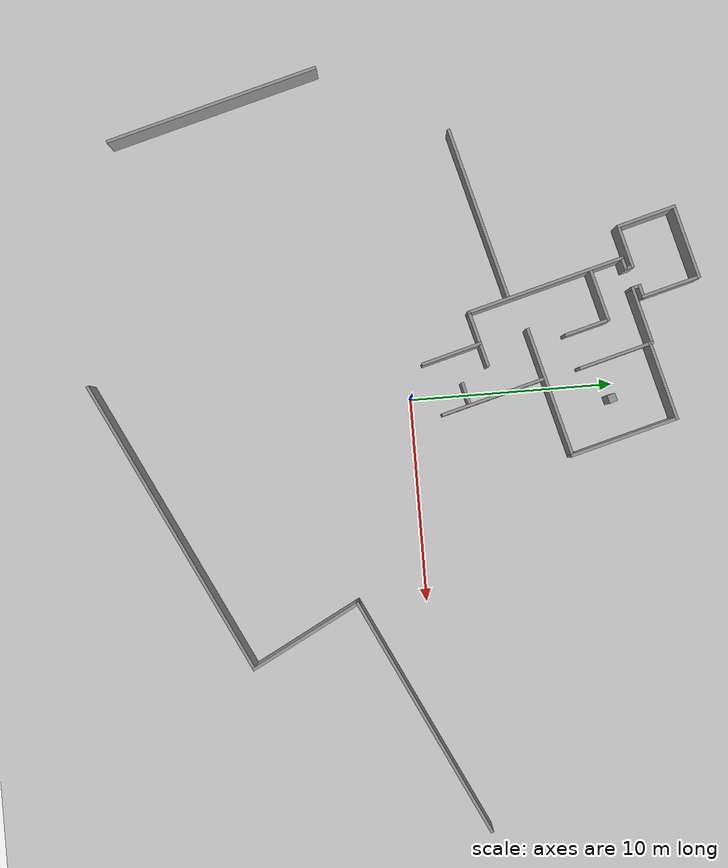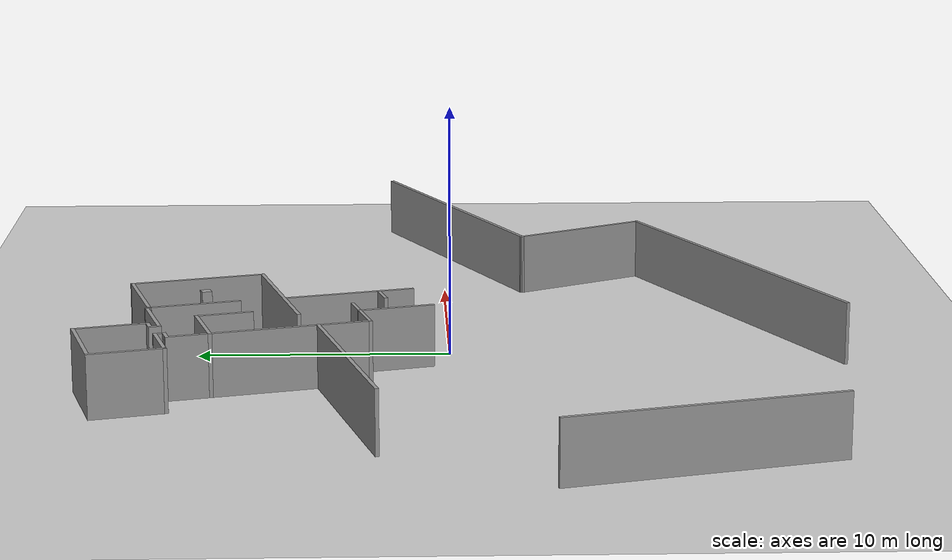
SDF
<sdf version="1.7">
 <world name="default">
  <light name="sun" type="directional">
   <pose>0 0 10 0 -0 0</pose>
   <diffuse>0.8 0.8 0.8 1</diffuse>
   <specular>0.2 0.2 0.2 1</specular>
   <attenuation>
    <range>1000</range>
    <constant>0.9</constant>
    <linear>0.01</linear>
    <quadratic>0.001</quadratic>
   </attenuation>
   <direction>-0.5 0.1 -0.9</direction>
   <spot><inner_angle>0</inner_angle><outer_angle>0</outer_angle><falloff>0</falloff></spot>
  </light>
  <model name="ground_plane">
   <static>1</static>
   <link name="link">
    <collision name="collision">
     <geometry><plane><normal>0 0 1</normal><size>100 100</size></plane></geometry>
     <surface><friction><ode><mu>100</mu><mu2>50</mu2></ode></friction></surface>
    </collision>
    <visual name="visual">
     <cast_shadows>0</cast_shadows>
     <geometry><plane><normal>0 0 1</normal><size>100 100</size></plane></geometry>
     <material>
      <script><uri>file://media/materials/scripts/gazebo.material</uri><name>Gazebo/Grey</name></script>
     </material>
    </visual>
   </link>
  </model>
  <gravity>0 0 -9.8</gravity>
  <magnetic_field>6e-06 2.3e-05 -4.2e-05</magnetic_field>
  <atmosphere type="adiabatic"/>
  <physics type="ode">
   <max_step_size>0.001</max_step_size>
   <real_time_factor>1</real_time_factor>
   <real_time_update_rate>1000</real_time_update_rate>
  </physics>
  <scene><ambient>0.4 0.4 0.4 1</ambient><background>0.7 0.7 0.7 1</background><shadows>1</shadows></scene>
  <spherical_coordinates>
   <surface_model>EARTH_WGS84</surface_model>
   <latitude_deg>0</latitude_deg>
   <longitude_deg>0</longitude_deg>
   <elevation>0</elevation>
   <heading_deg>0</heading_deg>
  </spherical_coordinates>
  <model name="building_0_clone">
   <link name="Wall_10">
    <pose>-4.05228 3.39869 0 0 0 -2.87979</pose>
    <inertial>
     <mass>1</mass>
     <inertia><ixx>1</ixx><ixy>0</ixy><ixz>0</ixz><iyy>1</iyy><iyz>0</iyz><izz>1</izz></inertia>
    </inertial>
    <visual name="Wall_10_Visual">
     <pose>0.025 0 1.25 0 -0 0</pose>
     <geometry><box><size>2.2 0.15 2.5</size></box></geometry>
     <material>
      <script><uri>file://media/materials/scripts/gazebo.material</uri><name>Gazebo/Grey</name></script>
      <ambient>1 1 1 1</ambient>
      <shader type="pixel"><normal_map>__default__</normal_map></shader>
      <diffuse>0.7 0.7 0.7 1</diffuse>
      <specular>0.01 0.01 0.01 1</specular>
      <emissive>0 0 0 1</emissive>
     </material>
     <meta><layer>0</layer></meta>
    </visual>
    <collision name="Wall_10_Collision">
     <pose>0.025 0 1.25 0 -0 0</pose>
     <geometry><box><size>2.2 0.15 2.5</size></box></geometry>
     <surface>
      <friction>
       <ode><mu>1</mu><mu2>1</mu2><fdir1>0 0 0</fdir1><slip1>0</slip1><slip2>0</slip2></ode>
       <torsional>
        <coefficient>1</coefficient>
        <patch_radius>0</patch_radius>
        <surface_radius>0</surface_radius>
        <use_patch_radius>1</use_patch_radius>
        <ode><slip>0</slip></ode>
       </torsional>
      </friction>
      <bounce><restitution_coefficient>0</restitution_coefficient><threshold>1e+06</threshold></bounce>
      <contact>
       <collide_without_contact>0</collide_without_contact>
       <collide_without_contact_bitmask>1</collide_without_contact_bitmask>
       <collide_bitmask>1</collide_bitmask>
       <ode>
        <soft_cfm>0</soft_cfm>
        <soft_erp>0.2</soft_erp>
        <kp>1e+13</kp>
        <kd>1</kd>
        <max_vel>0.01</max_vel>
        <min_depth>0</min_depth>
       </ode>
       <bullet>
        <split_impulse>1</split_impulse>
        <split_impulse_penetration_threshold>-0.01</split_impulse_penetration_threshold>
        <soft_cfm>0</soft_cfm>
        <soft_erp>0.2</soft_erp>
        <kp>1e+13</kp>
        <kd>1</kd>
       </bullet>
      </contact>
     </surface>
    </collision>
   </link>
   <link name="Wall_11">
    <pose>-5.43532 4.50338 0 0 -0 1.8326</pose>
    <visual name="Wall_11_Visual">
     <pose>0 0 1.25 0 -0 0</pose>
     <geometry><box><size>3 0.15 2.5</size></box></geometry>
     <material>
      <script><uri>file://media/materials/scripts/gazebo.material</uri><name>Gazebo/Grey</name></script>
      <ambient>1 1 1 1</ambient>
      <shader type="pixel"/>
     </material>
     <meta><layer>0</layer></meta>
    </visual>
    <collision name="Wall_11_Collision">
     <pose>0 0 1.25 0 -0 0</pose>
     <geometry><box><size>3 0.15 2.5</size></box></geometry>
     <surface>
      <friction>
       <ode><mu>1</mu><mu2>1</mu2><fdir1>0 0 0</fdir1><slip1>0</slip1><slip2>0</slip2></ode>
       <torsional>
        <coefficient>1</coefficient>
        <patch_radius>0</patch_radius>
        <surface_radius>0</surface_radius>
        <use_patch_radius>1</use_patch_radius>
        <ode><slip>0</slip></ode>
       </torsional>
      </friction>
      <bounce><restitution_coefficient>0</restitution_coefficient><threshold>1e+06</threshold></bounce>
      <contact>
       <collide_without_contact>0</collide_without_contact>
       <collide_without_contact_bitmask>1</collide_without_contact_bitmask>
       <collide_bitmask>1</collide_bitmask>
       <ode>
        <soft_cfm>0</soft_cfm>
        <soft_erp>0.2</soft_erp>
        <kp>1e+13</kp>
        <kd>1</kd>
        <max_vel>0.01</max_vel>
        <min_depth>0</min_depth>
       </ode>
       <bullet>
        <split_impulse>1</split_impulse>
        <split_impulse_penetration_threshold>-0.01</split_impulse_penetration_threshold>
        <soft_cfm>0</soft_cfm>
        <soft_erp>0.2</soft_erp>
        <kp>1e+13</kp>
        <kd>1</kd>
       </bullet>
      </contact>
     </surface>
    </collision>
   </link>
   <link name="Wall_14">
    <pose>-4.06547 6.3457 0 0 -0 0.261799</pose>
    <visual name="Wall_14_Visual">
     <pose>0 0 1.25 0 -0 0</pose>
     <geometry><box><size>3.75 0.15 2.5</size></box></geometry>
     <material>
      <script><uri>file://media/materials/scripts/gazebo.material</uri><name>Gazebo/Grey</name></script>
      <ambient>1 1 1 1</ambient>
      <shader type="pixel"/>
     </material>
     <meta><layer>0</layer></meta>
    </visual>
    <collision name="Wall_14_Collision">
     <pose>0 0 1.25 0 -0 0</pose>
     <geometry><box><size>3.75 0.15 2.5</size></box></geometry>
     <surface>
      <friction>
       <ode><mu>1</mu><mu2>1</mu2><fdir1>0 0 0</fdir1><slip1>0</slip1><slip2>0</slip2></ode>
       <torsional>
        <coefficient>1</coefficient>
        <patch_radius>0</patch_radius>
        <surface_radius>0</surface_radius>
        <use_patch_radius>1</use_patch_radius>
        <ode><slip>0</slip></ode>
       </torsional>
      </friction>
      <bounce><restitution_coefficient>0</restitution_coefficient><threshold>1e+06</threshold></bounce>
      <contact>
       <collide_without_contact>0</collide_without_contact>
       <collide_without_contact_bitmask>1</collide_without_contact_bitmask>
       <collide_bitmask>1</collide_bitmask>
       <ode>
        <soft_cfm>0</soft_cfm>
        <soft_erp>0.2</soft_erp>
        <kp>1e+13</kp>
        <kd>1</kd>
        <max_vel>0.01</max_vel>
        <min_depth>0</min_depth>
       </ode>
       <bullet>
        <split_impulse>1</split_impulse>
        <split_impulse_penetration_threshold>-0.01</split_impulse_penetration_threshold>
        <soft_cfm>0</soft_cfm>
        <soft_erp>0.2</soft_erp>
        <kp>1e+13</kp>
        <kd>1</kd>
       </bullet>
      </contact>
     </surface>
    </collision>
   </link>
   <link name="Wall_15">
    <pose>-1.95798 5.43513 0 0 0 -1.309</pose>
    <visual name="Wall_15_Visual">
     <pose>0 0 1.25 0 -0 0</pose>
     <geometry><box><size>3 0.15 2.5</size></box></geometry>
     <material>
      <script><uri>file://media/materials/scripts/gazebo.material</uri><name>Gazebo/Grey</name></script>
      <ambient>1 1 1 1</ambient>
      <shader type="pixel"/>
     </material>
     <meta><layer>0</layer></meta>
    </visual>
    <collision name="Wall_15_Collision">
     <pose>0 0 1.25 0 -0 0</pose>
     <geometry><box><size>3 0.15 2.5</size></box></geometry>
     <surface>
      <friction>
       <ode><mu>1</mu><mu2>1</mu2><fdir1>0 0 0</fdir1><slip1>0</slip1><slip2>0</slip2></ode>
       <torsional>
        <coefficient>1</coefficient>
        <patch_radius>0</patch_radius>
        <surface_radius>0</surface_radius>
        <use_patch_radius>1</use_patch_radius>
        <ode><slip>0</slip></ode>
       </torsional>
      </friction>
      <bounce><restitution_coefficient>0</restitution_coefficient><threshold>1e+06</threshold></bounce>
      <contact>
       <collide_without_contact>0</collide_without_contact>
       <collide_without_contact_bitmask>1</collide_without_contact_bitmask>
       <collide_bitmask>1</collide_bitmask>
       <ode>
        <soft_cfm>0</soft_cfm>
        <soft_erp>0.2</soft_erp>
        <kp>1e+13</kp>
        <kd>1</kd>
        <max_vel>0.01</max_vel>
        <min_depth>0</min_depth>
       </ode>
       <bullet>
        <split_impulse>1</split_impulse>
        <split_impulse_penetration_threshold>-0.01</split_impulse_penetration_threshold>
        <soft_cfm>0</soft_cfm>
        <soft_erp>0.2</soft_erp>
        <kp>1e+13</kp>
        <kd>1</kd>
       </bullet>
      </contact>
     </surface>
    </collision>
   </link>
   <link name="Wall_16">
    <pose>-1.87894 3.98104 0 0 0 -2.87979</pose>
    <inertial>
     <mass>1</mass>
     <inertia><ixx>1</ixx><ixy>0</ixy><ixz>0</ixz><iyy>1</iyy><iyz>0</iyz><izz>1</izz></inertia>
    </inertial>
    <visual name="Wall_16_Visual">
     <pose>-0.025 0 1.25 0 -0 0</pose>
     <geometry><box><size>0.7 0.15 2.5</size></box></geometry>
     <material>
      <script><uri>file://media/materials/scripts/gazebo.material</uri><name>Gazebo/Grey</name></script>
      <ambient>1 1 1 1</ambient>
      <shader type="pixel"><normal_map>__default__</normal_map></shader>
      <diffuse>0.7 0.7 0.7 1</diffuse>
      <specular>0.01 0.01 0.01 1</specular>
      <emissive>0 0 0 1</emissive>
     </material>
     <meta><layer>0</layer></meta>
    </visual>
    <collision name="Wall_16_Collision">
     <pose>-0.025 0 1.25 0 -0 0</pose>
     <geometry><box><size>0.7 0.15 2.5</size></box></geometry>
     <surface>
      <friction>
       <ode><mu>1</mu><mu2>1</mu2><fdir1>0 0 0</fdir1><slip1>0</slip1><slip2>0</slip2></ode>
       <torsional>
        <coefficient>1</coefficient>
        <patch_radius>0</patch_radius>
        <surface_radius>0</surface_radius>
        <use_patch_radius>1</use_patch_radius>
        <ode><slip>0</slip></ode>
       </torsional>
      </friction>
      <bounce><restitution_coefficient>0</restitution_coefficient><threshold>1e+06</threshold></bounce>
      <contact>
       <collide_without_contact>0</collide_without_contact>
       <collide_without_contact_bitmask>1</collide_without_contact_bitmask>
       <collide_bitmask>1</collide_bitmask>
       <ode>
        <soft_cfm>0</soft_cfm>
        <soft_erp>0.2</soft_erp>
        <kp>1e+13</kp>
        <kd>1</kd>
        <max_vel>0.01</max_vel>
        <min_depth>0</min_depth>
       </ode>
       <bullet>
        <split_impulse>1</split_impulse>
        <split_impulse_penetration_threshold>-0.01</split_impulse_penetration_threshold>
        <soft_cfm>0</soft_cfm>
        <soft_erp>0.2</soft_erp>
        <kp>1e+13</kp>
        <kd>1</kd>
       </bullet>
      </contact>
     </surface>
    </collision>
   </link>
   <link name="Wall_17">
    <pose>-2.12343 3.73435 0 0 0 -1.309</pose>
    <inertial>
     <mass>1</mass>
     <inertia><ixx>1</ixx><ixy>0</ixy><ixz>0</ixz><iyy>1</iyy><iyz>0</iyz><izz>1</izz></inertia>
    </inertial>
    <visual name="Wall_17_Visual">
     <pose>0 0.05 1.25 0 -0 0</pose>
     <geometry><box><size>0.5 0.15 2.5</size></box></geometry>
     <material>
      <script><uri>file://media/materials/scripts/gazebo.material</uri><name>Gazebo/Grey</name></script>
      <ambient>1 1 1 1</ambient>
      <shader type="pixel"><normal_map>__default__</normal_map></shader>
      <diffuse>0.7 0.7 0.7 1</diffuse>
      <specular>0.01 0.01 0.01 1</specular>
      <emissive>0 0 0 1</emissive>
     </material>
     <meta><layer>0</layer></meta>
    </visual>
    <collision name="Wall_17_Collision">
     <pose>0 0.05 1.25 0 -0 0</pose>
     <geometry><box><size>0.5 0.15 2.5</size></box></geometry>
     <surface>
      <friction>
       <ode><mu>1</mu><mu2>1</mu2><fdir1>0 0 0</fdir1><slip1>0</slip1><slip2>0</slip2></ode>
       <torsional>
        <coefficient>1</coefficient>
        <patch_radius>0</patch_radius>
        <surface_radius>0</surface_radius>
        <use_patch_radius>1</use_patch_radius>
        <ode><slip>0</slip></ode>
       </torsional>
      </friction>
      <bounce><restitution_coefficient>0</restitution_coefficient><threshold>1e+06</threshold></bounce>
      <contact>
       <collide_without_contact>0</collide_without_contact>
       <collide_without_contact_bitmask>1</collide_without_contact_bitmask>
       <collide_bitmask>1</collide_bitmask>
       <ode>
        <soft_cfm>0</soft_cfm>
        <soft_erp>0.2</soft_erp>
        <kp>1e+13</kp>
        <kd>1</kd>
        <max_vel>0.01</max_vel>
        <min_depth>0</min_depth>
       </ode>
       <bullet>
        <split_impulse>1</split_impulse>
        <split_impulse_penetration_threshold>-0.01</split_impulse_penetration_threshold>
        <soft_cfm>0</soft_cfm>
        <soft_erp>0.2</soft_erp>
        <kp>1e+13</kp>
        <kd>1</kd>
       </bullet>
      </contact>
     </surface>
    </collision>
   </link>
   <link name="Wall_18">
    <pose>-0.70169 3.93413 0 0 -0 0.261799</pose>
    <inertial>
     <mass>1</mass>
     <inertia><ixx>1</ixx><ixy>0</ixy><ixz>0</ixz><iyy>1</iyy><iyz>0</iyz><izz>1</izz></inertia>
    </inertial>
    <visual name="Wall_18_Visual">
     <pose>0.025 0 1.25 0 -0 0</pose>
     <geometry><box><size>2.95 0.15 2.5</size></box></geometry>
     <material>
      <script><uri>file://media/materials/scripts/gazebo.material</uri><name>Gazebo/Grey</name></script>
      <ambient>1 1 1 1</ambient>
      <shader type="pixel"><normal_map>__default__</normal_map></shader>
      <diffuse>0.7 0.7 0.7 1</diffuse>
      <specular>0.01 0.01 0.01 1</specular>
      <emissive>0 0 0 1</emissive>
     </material>
     <meta><layer>0</layer></meta>
    </visual>
    <collision name="Wall_18_Collision">
     <pose>0.025 0 1.25 0 -0 0</pose>
     <geometry><box><size>2.95 0.15 2.5</size></box></geometry>
     <surface>
      <friction>
       <ode><mu>1</mu><mu2>1</mu2><fdir1>0 0 0</fdir1><slip1>0</slip1><slip2>0</slip2></ode>
       <torsional>
        <coefficient>1</coefficient>
        <patch_radius>0</patch_radius>
        <surface_radius>0</surface_radius>
        <use_patch_radius>1</use_patch_radius>
        <ode><slip>0</slip></ode>
       </torsional>
      </friction>
      <bounce><restitution_coefficient>0</restitution_coefficient><threshold>1e+06</threshold></bounce>
      <contact>
       <collide_without_contact>0</collide_without_contact>
       <collide_without_contact_bitmask>1</collide_without_contact_bitmask>
       <collide_bitmask>1</collide_bitmask>
       <ode>
        <soft_cfm>0</soft_cfm>
        <soft_erp>0.2</soft_erp>
        <kp>1e+13</kp>
        <kd>1</kd>
        <max_vel>0.01</max_vel>
        <min_depth>0</min_depth>
       </ode>
       <bullet>
        <split_impulse>1</split_impulse>
        <split_impulse_penetration_threshold>-0.01</split_impulse_penetration_threshold>
        <soft_cfm>0</soft_cfm>
        <soft_erp>0.2</soft_erp>
        <kp>1e+13</kp>
        <kd>1</kd>
       </bullet>
      </contact>
     </surface>
    </collision>
   </link>
   <link name="Wall_2">
    <pose>0.435188 -5.40132 0 0 -0 1.83735</pose>
    <visual name="Wall_2_Visual">
     <pose>0 0 1.25 0 -0 0</pose>
     <geometry><box><size>3.07323 0.15 2.5</size></box></geometry>
     <material>
      <script><uri>file://media/materials/scripts/gazebo.material</uri><name>Gazebo/Grey</name></script>
      <ambient>1 1 1 1</ambient>
      <shader type="pixel"/>
     </material>
     <meta><layer>0</layer></meta>
    </visual>
    <collision name="Wall_2_Collision">
     <pose>0 0 1.25 0 -0 0</pose>
     <geometry><box><size>3.07323 0.15 2.5</size></box></geometry>
     <surface>
      <friction>
       <ode><mu>1</mu><mu2>1</mu2><fdir1>0 0 0</fdir1><slip1>0</slip1><slip2>0</slip2></ode>
       <torsional>
        <coefficient>1</coefficient>
        <patch_radius>0</patch_radius>
        <surface_radius>0</surface_radius>
        <use_patch_radius>1</use_patch_radius>
        <ode><slip>0</slip></ode>
       </torsional>
      </friction>
      <bounce><restitution_coefficient>0</restitution_coefficient><threshold>1e+06</threshold></bounce>
      <contact>
       <collide_without_contact>0</collide_without_contact>
       <collide_without_contact_bitmask>1</collide_without_contact_bitmask>
       <collide_bitmask>1</collide_bitmask>
       <ode>
        <soft_cfm>0</soft_cfm>
        <soft_erp>0.2</soft_erp>
        <kp>1e+13</kp>
        <kd>1</kd>
        <max_vel>0.01</max_vel>
        <min_depth>0</min_depth>
       </ode>
       <bullet>
        <split_impulse>1</split_impulse>
        <split_impulse_penetration_threshold>-0.01</split_impulse_penetration_threshold>
        <soft_cfm>0</soft_cfm>
        <soft_erp>0.2</soft_erp>
        <kp>1e+13</kp>
        <kd>1</kd>
       </bullet>
      </contact>
     </surface>
    </collision>
   </link>
   <link name="Wall_20">
    <pose>0.687696 4.25465 0 0 0 -1.309</pose>
    <visual name="Wall_20_Visual">
     <pose>0 0 1.25 0 -0 0</pose>
     <geometry><box><size>0.25 0.15 2.5</size></box></geometry>
     <material>
      <script><uri>file://media/materials/scripts/gazebo.material</uri><name>Gazebo/Grey</name></script>
      <ambient>1 1 1 1</ambient>
      <shader type="pixel"/>
     </material>
     <meta><layer>0</layer></meta>
    </visual>
    <collision name="Wall_20_Collision">
     <pose>0 0 1.25 0 -0 0</pose>
     <geometry><box><size>0.25 0.15 2.5</size></box></geometry>
     <surface>
      <friction>
       <ode><mu>1</mu><mu2>1</mu2><fdir1>0 0 0</fdir1><slip1>0</slip1><slip2>0</slip2></ode>
       <torsional>
        <coefficient>1</coefficient>
        <patch_radius>0</patch_radius>
        <surface_radius>0</surface_radius>
        <use_patch_radius>1</use_patch_radius>
        <ode><slip>0</slip></ode>
       </torsional>
      </friction>
      <bounce><restitution_coefficient>0</restitution_coefficient><threshold>1e+06</threshold></bounce>
      <contact>
       <collide_without_contact>0</collide_without_contact>
       <collide_without_contact_bitmask>1</collide_without_contact_bitmask>
       <collide_bitmask>1</collide_bitmask>
       <ode>
        <soft_cfm>0</soft_cfm>
        <soft_erp>0.2</soft_erp>
        <kp>1e+13</kp>
        <kd>1</kd>
        <max_vel>0.01</max_vel>
        <min_depth>0</min_depth>
       </ode>
       <bullet>
        <split_impulse>1</split_impulse>
        <split_impulse_penetration_threshold>-0.01</split_impulse_penetration_threshold>
        <soft_cfm>0</soft_cfm>
        <soft_erp>0.2</soft_erp>
        <kp>1e+13</kp>
        <kd>1</kd>
       </bullet>
      </contact>
     </surface>
    </collision>
   </link>
   <link name="Wall_21">
    <pose>2.56004 4.70458 0 0 -0 0.261799</pose>
    <visual name="Wall_21_Visual">
     <pose>0 0 1.25 0 -0 0</pose>
     <geometry><box><size>4 0.15 2.5</size></box></geometry>
     <material>
      <script><uri>file://media/materials/scripts/gazebo.material</uri><name>Gazebo/Grey</name></script>
      <ambient>1 1 1 1</ambient>
      <shader type="pixel"/>
     </material>
     <meta><layer>0</layer></meta>
    </visual>
    <collision name="Wall_21_Collision">
     <pose>0 0 1.25 0 -0 0</pose>
     <geometry><box><size>4 0.15 2.5</size></box></geometry>
     <surface>
      <friction>
       <ode><mu>1</mu><mu2>1</mu2><fdir1>0 0 0</fdir1><slip1>0</slip1><slip2>0</slip2></ode>
       <torsional>
        <coefficient>1</coefficient>
        <patch_radius>0</patch_radius>
        <surface_radius>0</surface_radius>
        <use_patch_radius>1</use_patch_radius>
        <ode><slip>0</slip></ode>
       </torsional>
      </friction>
      <bounce><restitution_coefficient>0</restitution_coefficient><threshold>1e+06</threshold></bounce>
      <contact>
       <collide_without_contact>0</collide_without_contact>
       <collide_without_contact_bitmask>1</collide_without_contact_bitmask>
       <collide_bitmask>1</collide_bitmask>
       <ode>
        <soft_cfm>0</soft_cfm>
        <soft_erp>0.2</soft_erp>
        <kp>1e+13</kp>
        <kd>1</kd>
        <max_vel>0.01</max_vel>
        <min_depth>0</min_depth>
       </ode>
       <bullet>
        <split_impulse>1</split_impulse>
        <split_impulse_penetration_threshold>-0.01</split_impulse_penetration_threshold>
        <soft_cfm>0</soft_cfm>
        <soft_erp>0.2</soft_erp>
        <kp>1e+13</kp>
        <kd>1</kd>
       </bullet>
      </contact>
     </surface>
    </collision>
   </link>
   <link name="Wall_24">
    <pose>5.11179 2.61896 0 0 0 -1.309</pose>
    <visual name="Wall_24_Visual">
     <pose>0 0 1.25 0 -0 0</pose>
     <geometry><box><size>5.5 0.15 2.5</size></box></geometry>
     <material>
      <script><uri>file://media/materials/scripts/gazebo.material</uri><name>Gazebo/Grey</name></script>
      <ambient>1 1 1 1</ambient>
      <shader type="pixel"/>
     </material>
     <meta><layer>0</layer></meta>
    </visual>
    <collision name="Wall_24_Collision">
     <pose>0 0 1.25 0 -0 0</pose>
     <geometry><box><size>5.5 0.15 2.5</size></box></geometry>
     <surface>
      <friction>
       <ode><mu>1</mu><mu2>1</mu2><fdir1>0 0 0</fdir1><slip1>0</slip1><slip2>0</slip2></ode>
       <torsional>
        <coefficient>1</coefficient>
        <patch_radius>0</patch_radius>
        <surface_radius>0</surface_radius>
        <use_patch_radius>1</use_patch_radius>
        <ode><slip>0</slip></ode>
       </torsional>
      </friction>
      <bounce><restitution_coefficient>0</restitution_coefficient><threshold>1e+06</threshold></bounce>
      <contact>
       <collide_without_contact>0</collide_without_contact>
       <collide_without_contact_bitmask>1</collide_without_contact_bitmask>
       <collide_bitmask>1</collide_bitmask>
       <ode>
        <soft_cfm>0</soft_cfm>
        <soft_erp>0.2</soft_erp>
        <kp>1e+13</kp>
        <kd>1</kd>
        <max_vel>0.01</max_vel>
        <min_depth>0</min_depth>
       </ode>
       <bullet>
        <split_impulse>1</split_impulse>
        <split_impulse_penetration_threshold>-0.01</split_impulse_penetration_threshold>
        <soft_cfm>0</soft_cfm>
        <soft_erp>0.2</soft_erp>
        <kp>1e+13</kp>
        <kd>1</kd>
       </bullet>
      </contact>
     </surface>
    </collision>
   </link>
   <link name="Wall_25">
    <pose>2.61658 -0.818994 0 0 0 -2.87979</pose>
    <inertial>
     <mass>1</mass>
     <inertia><ixx>1</ixx><ixy>0</ixy><ixz>0</ixz><iyy>1</iyy><iyz>0</iyz><izz>1</izz></inertia>
    </inertial>
    <visual name="Wall_25_Visual">
     <pose>-0.075 0 1.25 0 -0 0</pose>
     <geometry><box><size>6.6 0.15 2.5</size></box></geometry>
     <material>
      <script><uri>file://media/materials/scripts/gazebo.material</uri><name>Gazebo/Grey</name></script>
      <ambient>1 1 1 1</ambient>
      <shader type="pixel"><normal_map>__default__</normal_map></shader>
      <diffuse>0.7 0.7 0.7 1</diffuse>
      <specular>0.01 0.01 0.01 1</specular>
      <emissive>0 0 0 1</emissive>
     </material>
     <meta><layer>0</layer></meta>
    </visual>
    <collision name="Wall_25_Collision">
     <pose>-0.075 0 1.25 0 -0 0</pose>
     <geometry><box><size>6.6 0.15 2.5</size></box></geometry>
     <surface>
      <friction>
       <ode><mu>1</mu><mu2>1</mu2><fdir1>0 0 0</fdir1><slip1>0</slip1><slip2>0</slip2></ode>
       <torsional>
        <coefficient>1</coefficient>
        <patch_radius>0</patch_radius>
        <surface_radius>0</surface_radius>
        <use_patch_radius>1</use_patch_radius>
        <ode><slip>0</slip></ode>
       </torsional>
      </friction>
      <bounce><restitution_coefficient>0</restitution_coefficient><threshold>1e+06</threshold></bounce>
      <contact>
       <collide_without_contact>0</collide_without_contact>
       <collide_without_contact_bitmask>1</collide_without_contact_bitmask>
       <collide_bitmask>1</collide_bitmask>
       <ode>
        <soft_cfm>0</soft_cfm>
        <soft_erp>0.2</soft_erp>
        <kp>1e+13</kp>
        <kd>1</kd>
        <max_vel>0.01</max_vel>
        <min_depth>0</min_depth>
       </ode>
       <bullet>
        <split_impulse>1</split_impulse>
        <split_impulse_penetration_threshold>-0.01</split_impulse_penetration_threshold>
        <soft_cfm>0</soft_cfm>
        <soft_erp>0.2</soft_erp>
        <kp>1e+13</kp>
        <kd>1</kd>
       </bullet>
      </contact>
     </surface>
    </collision>
   </link>
   <link name="Wall_28">
    <pose>1.19886 2.34695 0 0 0 -1.309</pose>
    <inertial>
     <mass>1</mass>
     <inertia><ixx>1</ixx><ixy>0</ixy><ixz>0</ixz><iyy>1</iyy><iyz>0</iyz><izz>1</izz></inertia>
    </inertial>
    <visual name="Wall_28_Visual">
     <pose>-0.2 0 1.25 0 -0 0</pose>
     <geometry><box><size>3.8 0.15 2.5</size></box></geometry>
     <material>
      <script><uri>file://media/materials/scripts/gazebo.material</uri><name>Gazebo/Grey</name></script>
      <ambient>1 1 1 1</ambient>
      <shader type="pixel"><normal_map>__default__</normal_map></shader>
      <diffuse>0.7 0.7 0.7 1</diffuse>
      <specular>0.01 0.01 0.01 1</specular>
      <emissive>0 0 0 1</emissive>
     </material>
     <meta><layer>0</layer></meta>
    </visual>
    <collision name="Wall_28_Collision">
     <pose>-0.2 0 1.25 0 -0 0</pose>
     <geometry><box><size>3.8 0.15 2.5</size></box></geometry>
     <surface>
      <friction>
       <ode><mu>1</mu><mu2>1</mu2><fdir1>0 0 0</fdir1><slip1>0</slip1><slip2>0</slip2></ode>
       <torsional>
        <coefficient>1</coefficient>
        <patch_radius>0</patch_radius>
        <surface_radius>0</surface_radius>
        <use_patch_radius>1</use_patch_radius>
        <ode><slip>0</slip></ode>
       </torsional>
      </friction>
      <bounce><restitution_coefficient>0</restitution_coefficient><threshold>1e+06</threshold></bounce>
      <contact>
       <collide_without_contact>0</collide_without_contact>
       <collide_without_contact_bitmask>1</collide_without_contact_bitmask>
       <collide_bitmask>1</collide_bitmask>
       <ode>
        <soft_cfm>0</soft_cfm>
        <soft_erp>0.2</soft_erp>
        <kp>1e+13</kp>
        <kd>1</kd>
        <max_vel>0.01</max_vel>
        <min_depth>0</min_depth>
       </ode>
       <bullet>
        <split_impulse>1</split_impulse>
        <split_impulse_penetration_threshold>-0.01</split_impulse_penetration_threshold>
        <soft_cfm>0</soft_cfm>
        <soft_erp>0.2</soft_erp>
        <kp>1e+13</kp>
        <kd>1</kd>
       </bullet>
      </contact>
     </surface>
    </collision>
   </link>
   <link name="Wall_33">
    <pose>-1.85143 1.94385 0 0 -0 0.261799</pose>
    <visual name="Wall_33_Visual">
     <pose>0 0 1.25 0 -0 0</pose>
     <geometry><box><size>2.75 0.15 2.5</size></box></geometry>
     <material>
      <script><uri>file://media/materials/scripts/gazebo.material</uri><name>Gazebo/Grey</name></script>
      <ambient>1 1 1 1</ambient>
      <shader type="pixel"/>
     </material>
     <meta><layer>0</layer></meta>
    </visual>
    <collision name="Wall_33_Collision">
     <pose>0 0 1.25 0 -0 0</pose>
     <geometry><box><size>2.75 0.15 2.5</size></box></geometry>
     <surface>
      <friction>
       <ode><mu>1</mu><mu2>1</mu2><fdir1>0 0 0</fdir1><slip1>0</slip1><slip2>0</slip2></ode>
       <torsional>
        <coefficient>1</coefficient>
        <patch_radius>0</patch_radius>
        <surface_radius>0</surface_radius>
        <use_patch_radius>1</use_patch_radius>
        <ode><slip>0</slip></ode>
       </torsional>
      </friction>
      <bounce><restitution_coefficient>0</restitution_coefficient><threshold>1e+06</threshold></bounce>
      <contact>
       <collide_without_contact>0</collide_without_contact>
       <collide_without_contact_bitmask>1</collide_without_contact_bitmask>
       <collide_bitmask>1</collide_bitmask>
       <ode>
        <soft_cfm>0</soft_cfm>
        <soft_erp>0.2</soft_erp>
        <kp>1e+13</kp>
        <kd>1</kd>
        <max_vel>0.01</max_vel>
        <min_depth>0</min_depth>
       </ode>
       <bullet>
        <split_impulse>1</split_impulse>
        <split_impulse_penetration_threshold>-0.01</split_impulse_penetration_threshold>
        <soft_cfm>0</soft_cfm>
        <soft_erp>0.2</soft_erp>
        <kp>1e+13</kp>
        <kd>1</kd>
       </bullet>
      </contact>
     </surface>
    </collision>
   </link>
   <link name="Wall_35">
    <pose>-0.29161 1.14535 0 0 0 -1.309</pose>
    <inertial>
     <mass>1</mass>
     <inertia><ixx>1</ixx><ixy>0</ixy><ixz>0</ixz><iyy>1</iyy><iyz>0</iyz><izz>1</izz></inertia>
    </inertial>
    <visual name="Wall_35_Visual">
     <pose>-0.1 0 1.25 0 -0 0</pose>
     <geometry><box><size>2.3 0.15 2.5</size></box></geometry>
     <material>
      <script><uri>file://media/materials/scripts/gazebo.material</uri><name>Gazebo/Grey</name></script>
      <ambient>1 1 1 1</ambient>
      <shader type="pixel"><normal_map>__default__</normal_map></shader>
      <diffuse>0.7 0.7 0.7 1</diffuse>
      <specular>0.01 0.01 0.01 1</specular>
      <emissive>0 0 0 1</emissive>
     </material>
     <meta><layer>0</layer></meta>
    </visual>
    <collision name="Wall_35_Collision">
     <pose>-0.1 0 1.25 0 -0 0</pose>
     <geometry><box><size>2.3 0.15 2.5</size></box></geometry>
     <surface>
      <friction>
       <ode><mu>1</mu><mu2>1</mu2><fdir1>0 0 0</fdir1><slip1>0</slip1><slip2>0</slip2></ode>
       <torsional>
        <coefficient>1</coefficient>
        <patch_radius>0</patch_radius>
        <surface_radius>0</surface_radius>
        <use_patch_radius>1</use_patch_radius>
        <ode><slip>0</slip></ode>
       </torsional>
      </friction>
      <bounce><restitution_coefficient>0</restitution_coefficient><threshold>1e+06</threshold></bounce>
      <contact>
       <collide_without_contact>0</collide_without_contact>
       <collide_without_contact_bitmask>1</collide_without_contact_bitmask>
       <collide_bitmask>1</collide_bitmask>
       <ode>
        <soft_cfm>0</soft_cfm>
        <soft_erp>0.2</soft_erp>
        <kp>1e+13</kp>
        <kd>1</kd>
        <max_vel>0.01</max_vel>
        <min_depth>0</min_depth>
       </ode>
       <bullet>
        <split_impulse>1</split_impulse>
        <split_impulse_penetration_threshold>-0.01</split_impulse_penetration_threshold>
        <soft_cfm>0</soft_cfm>
        <soft_erp>0.2</soft_erp>
        <kp>1e+13</kp>
        <kd>1</kd>
       </bullet>
      </contact>
     </surface>
    </collision>
   </link>
   <link name="Wall_40">
    <pose>2.67397 -3.56266 0 0 0 -1.309</pose>
    <visual name="Wall_40_Visual">
     <pose>0 0 1.25 0 -0 0</pose>
     <geometry><box><size>5.25 0.15 2.5</size></box></geometry>
     <material>
      <script><uri>file://media/materials/scripts/gazebo.material</uri><name>Gazebo/Grey</name></script>
      <ambient>1 1 1 1</ambient>
      <shader type="pixel"/>
     </material>
     <meta><layer>0</layer></meta>
    </visual>
    <collision name="Wall_40_Collision">
     <pose>0 0 1.25 0 -0 0</pose>
     <geometry><box><size>5.25 0.15 2.5</size></box></geometry>
     <surface>
      <friction>
       <ode><mu>1</mu><mu2>1</mu2><fdir1>0 0 0</fdir1><slip1>0</slip1><slip2>0</slip2></ode>
       <torsional>
        <coefficient>1</coefficient>
        <patch_radius>0</patch_radius>
        <surface_radius>0</surface_radius>
        <use_patch_radius>1</use_patch_radius>
        <ode><slip>0</slip></ode>
       </torsional>
      </friction>
      <bounce><restitution_coefficient>0</restitution_coefficient><threshold>1e+06</threshold></bounce>
      <contact>
       <collide_without_contact>0</collide_without_contact>
       <collide_without_contact_bitmask>1</collide_without_contact_bitmask>
       <collide_bitmask>1</collide_bitmask>
       <ode>
        <soft_cfm>0</soft_cfm>
        <soft_erp>0.2</soft_erp>
        <kp>1e+13</kp>
        <kd>1</kd>
        <max_vel>0.01</max_vel>
        <min_depth>0</min_depth>
       </ode>
       <bullet>
        <split_impulse>1</split_impulse>
        <split_impulse_penetration_threshold>-0.01</split_impulse_penetration_threshold>
        <soft_cfm>0</soft_cfm>
        <soft_erp>0.2</soft_erp>
        <kp>1e+13</kp>
        <kd>1</kd>
       </bullet>
      </contact>
     </surface>
    </collision>
   </link>
   <link name="Wall_42">
    <pose>0.581447 -3.84897 0 0 -0 0.261799</pose>
    <inertial>
     <mass>1</mass>
     <inertia><ixx>1</ixx><ixy>0</ixy><ixz>0</ixz><iyy>1</iyy><iyz>0</iyz><izz>1</izz></inertia>
    </inertial>
    <visual name="Wall_42_Visual">
     <pose>0 0 1.25 0 -0 0</pose>
     <geometry><box><size>1.25 0.15 2.5</size></box></geometry>
     <material>
      <script><uri>file://media/materials/scripts/gazebo.material</uri><name>Gazebo/Grey</name></script>
      <ambient>1 1 1 1</ambient>
      <shader type="pixel"><normal_map>__default__</normal_map></shader>
      <diffuse>0.7 0.7 0.7 1</diffuse>
      <specular>0.01 0.01 0.01 1</specular>
      <emissive>0 0 0 1</emissive>
     </material>
     <meta><layer>0</layer></meta>
    </visual>
    <collision name="Wall_42_Collision">
     <pose>0 0 1.25 0 -0 0</pose>
     <geometry><box><size>1.25 0.15 2.5</size></box></geometry>
     <surface>
      <friction>
       <ode><mu>1</mu><mu2>1</mu2><fdir1>0 0 0</fdir1><slip1>0</slip1><slip2>0</slip2></ode>
       <torsional>
        <coefficient>1</coefficient>
        <patch_radius>0</patch_radius>
        <surface_radius>0</surface_radius>
        <use_patch_radius>1</use_patch_radius>
        <ode><slip>0</slip></ode>
       </torsional>
      </friction>
      <bounce><restitution_coefficient>0</restitution_coefficient><threshold>1e+06</threshold></bounce>
      <contact>
       <collide_without_contact>0</collide_without_contact>
       <collide_without_contact_bitmask>1</collide_without_contact_bitmask>
       <collide_bitmask>1</collide_bitmask>
       <ode>
        <soft_cfm>0</soft_cfm>
        <soft_erp>0.2</soft_erp>
        <kp>1e+13</kp>
        <kd>1</kd>
        <max_vel>0.01</max_vel>
        <min_depth>0</min_depth>
       </ode>
       <bullet>
        <split_impulse>1</split_impulse>
        <split_impulse_penetration_threshold>-0.01</split_impulse_penetration_threshold>
        <soft_cfm>0</soft_cfm>
        <soft_erp>0.2</soft_erp>
        <kp>1e+13</kp>
        <kd>1</kd>
       </bullet>
      </contact>
     </surface>
    </collision>
   </link>
   <link name="Wall_45">
    <pose>2.35822 -4.8753 0 0 0 -2.87979</pose>
    <inertial>
     <mass>1</mass>
     <inertia><ixx>1</ixx><ixy>0</ixy><ixz>0</ixz><iyy>1</iyy><iyz>0</iyz><izz>1</izz></inertia>
    </inertial>
    <visual name="Wall_45_Visual">
     <pose>-0.08 0 1.25 0 -0 0</pose>
     <geometry><box><size>1.2 0.15 2.5</size></box></geometry>
     <material>
      <script><uri>file://media/materials/scripts/gazebo.material</uri><name>Gazebo/Grey</name></script>
      <ambient>1 1 1 1</ambient>
      <shader type="pixel"><normal_map>__default__</normal_map></shader>
      <diffuse>0.7 0.7 0.7 1</diffuse>
      <specular>0.01 0.01 0.01 1</specular>
      <emissive>0 0 0 1</emissive>
     </material>
     <meta><layer>0</layer></meta>
    </visual>
    <collision name="Wall_45_Collision">
     <pose>-0.08 0 1.25 0 -0 0</pose>
     <geometry><box><size>1.2 0.15 2.5</size></box></geometry>
     <surface>
      <friction>
       <ode><mu>1</mu><mu2>1</mu2><fdir1>0 0 0</fdir1><slip1>0</slip1><slip2>0</slip2></ode>
       <torsional>
        <coefficient>1</coefficient>
        <patch_radius>0</patch_radius>
        <surface_radius>0</surface_radius>
        <use_patch_radius>1</use_patch_radius>
        <ode><slip>0</slip></ode>
       </torsional>
      </friction>
      <bounce><restitution_coefficient>0</restitution_coefficient><threshold>1e+06</threshold></bounce>
      <contact>
       <collide_without_contact>0</collide_without_contact>
       <collide_without_contact_bitmask>1</collide_without_contact_bitmask>
       <collide_bitmask>1</collide_bitmask>
       <ode>
        <soft_cfm>0</soft_cfm>
        <soft_erp>0.2</soft_erp>
        <kp>1e+13</kp>
        <kd>1</kd>
        <max_vel>0.01</max_vel>
        <min_depth>0</min_depth>
       </ode>
       <bullet>
        <split_impulse>1</split_impulse>
        <split_impulse_penetration_threshold>-0.01</split_impulse_penetration_threshold>
        <soft_cfm>0</soft_cfm>
        <soft_erp>0.2</soft_erp>
        <kp>1e+13</kp>
        <kd>1</kd>
       </bullet>
      </contact>
     </surface>
    </collision>
   </link>
   <link name="Wall_5">
    <pose>-0.722553 -4.19837 0 0 0 -2.87979</pose>
    <visual name="Wall_5_Visual">
     <pose>0 0 1.25 0 -0 0</pose>
     <geometry><box><size>1.75 0.15 2.5</size></box></geometry>
     <material>
      <script><uri>file://media/materials/scripts/gazebo.material</uri><name>Gazebo/Grey</name></script>
      <ambient>1 1 1 1</ambient>
      <shader type="pixel"/>
     </material>
     <meta><layer>0</layer></meta>
    </visual>
    <collision name="Wall_5_Collision">
     <pose>0 0 1.25 0 -0 0</pose>
     <geometry><box><size>1.75 0.15 2.5</size></box></geometry>
     <surface>
      <friction>
       <ode><mu>1</mu><mu2>1</mu2><fdir1>0 0 0</fdir1><slip1>0</slip1><slip2>0</slip2></ode>
       <torsional>
        <coefficient>1</coefficient>
        <patch_radius>0</patch_radius>
        <surface_radius>0</surface_radius>
        <use_patch_radius>1</use_patch_radius>
        <ode><slip>0</slip></ode>
       </torsional>
      </friction>
      <bounce><restitution_coefficient>0</restitution_coefficient><threshold>1e+06</threshold></bounce>
      <contact>
       <collide_without_contact>0</collide_without_contact>
       <collide_without_contact_bitmask>1</collide_without_contact_bitmask>
       <collide_bitmask>1</collide_bitmask>
       <ode>
        <soft_cfm>0</soft_cfm>
        <soft_erp>0.2</soft_erp>
        <kp>1e+13</kp>
        <kd>1</kd>
        <max_vel>0.01</max_vel>
        <min_depth>0</min_depth>
       </ode>
       <bullet>
        <split_impulse>1</split_impulse>
        <split_impulse_penetration_threshold>-0.01</split_impulse_penetration_threshold>
        <soft_cfm>0</soft_cfm>
        <soft_erp>0.2</soft_erp>
        <kp>1e+13</kp>
        <kd>1</kd>
       </bullet>
      </contact>
     </surface>
    </collision>
   </link>
   <link name="Wall_6">
    <pose>-2.51116 -0.614171 0 0 -0 1.8326</pose>
    <visual name="Wall_6_Visual">
     <pose>0 0 1.25 0 -0 0</pose>
     <geometry><box><size>8 0.15 2.5</size></box></geometry>
     <material>
      <script><uri>file://media/materials/scripts/gazebo.material</uri><name>Gazebo/Grey</name></script>
      <ambient>1 1 1 1</ambient>
      <shader type="pixel"/>
     </material>
     <meta><layer>0</layer></meta>
    </visual>
    <collision name="Wall_6_Collision">
     <pose>0 0 1.25 0 -0 0</pose>
     <geometry><box><size>8 0.15 2.5</size></box></geometry>
     <surface>
      <friction>
       <ode><mu>1</mu><mu2>1</mu2><fdir1>0 0 0</fdir1><slip1>0</slip1><slip2>0</slip2></ode>
       <torsional>
        <coefficient>1</coefficient>
        <patch_radius>0</patch_radius>
        <surface_radius>0</surface_radius>
        <use_patch_radius>1</use_patch_radius>
        <ode><slip>0</slip></ode>
       </torsional>
      </friction>
      <bounce><restitution_coefficient>0</restitution_coefficient><threshold>1e+06</threshold></bounce>
      <contact>
       <collide_without_contact>0</collide_without_contact>
       <collide_without_contact_bitmask>1</collide_without_contact_bitmask>
       <collide_bitmask>1</collide_bitmask>
       <ode>
        <soft_cfm>0</soft_cfm>
        <soft_erp>0.2</soft_erp>
        <kp>1e+13</kp>
        <kd>1</kd>
        <max_vel>0.01</max_vel>
        <min_depth>0</min_depth>
       </ode>
       <bullet>
        <split_impulse>1</split_impulse>
        <split_impulse_penetration_threshold>-0.01</split_impulse_penetration_threshold>
        <soft_cfm>0</soft_cfm>
        <soft_erp>0.2</soft_erp>
        <kp>1e+13</kp>
        <kd>1</kd>
       </bullet>
      </contact>
     </surface>
    </collision>
   </link>
   <link name="Wall_8">
    <pose>-3.23725 3.25473 0 0 -0 0.261799</pose>
    <inertial>
     <mass>1</mass>
     <inertia><ixx>1</ixx><ixy>0</ixy><ixz>0</ixz><iyy>1</iyy><iyz>0</iyz><izz>1</izz></inertia>
    </inertial>
    <visual name="Wall_8_Visual">
     <pose>-0.025 0 1.25 0 -0 0</pose>
     <geometry><box><size>0.7 0.15 2.5</size></box></geometry>
     <material>
      <script><uri>file://media/materials/scripts/gazebo.material</uri><name>Gazebo/Grey</name></script>
      <ambient>1 1 1 1</ambient>
      <shader type="pixel"><normal_map>__default__</normal_map></shader>
      <diffuse>0.7 0.7 0.7 1</diffuse>
      <specular>0.01 0.01 0.01 1</specular>
      <emissive>0 0 0 1</emissive>
     </material>
     <meta><layer>0</layer></meta>
    </visual>
    <collision name="Wall_8_Collision">
     <pose>-0.025 0 1.25 0 -0 0</pose>
     <geometry><box><size>0.7 0.15 2.5</size></box></geometry>
     <surface>
      <friction>
       <ode><mu>1</mu><mu2>1</mu2><fdir1>0 0 0</fdir1><slip1>0</slip1><slip2>0</slip2></ode>
       <torsional>
        <coefficient>1</coefficient>
        <patch_radius>0</patch_radius>
        <surface_radius>0</surface_radius>
        <use_patch_radius>1</use_patch_radius>
        <ode><slip>0</slip></ode>
       </torsional>
      </friction>
      <bounce><restitution_coefficient>0</restitution_coefficient><threshold>1e+06</threshold></bounce>
      <contact>
       <collide_without_contact>0</collide_without_contact>
       <collide_without_contact_bitmask>1</collide_without_contact_bitmask>
       <collide_bitmask>1</collide_bitmask>
       <ode>
        <soft_cfm>0</soft_cfm>
        <soft_erp>0.2</soft_erp>
        <kp>1e+13</kp>
        <kd>1</kd>
        <max_vel>0.01</max_vel>
        <min_depth>0</min_depth>
       </ode>
       <bullet>
        <split_impulse>1</split_impulse>
        <split_impulse_penetration_threshold>-0.01</split_impulse_penetration_threshold>
        <soft_cfm>0</soft_cfm>
        <soft_erp>0.2</soft_erp>
        <kp>1e+13</kp>
        <kd>1</kd>
       </bullet>
      </contact>
     </surface>
    </collision>
   </link>
   <link name="Wall_9">
    <pose>-2.99276 3.50142 0 0 -0 1.8326</pose>
    <inertial>
     <mass>1</mass>
     <inertia><ixx>1</ixx><ixy>0</ixy><ixz>0</ixz><iyy>1</iyy><iyz>0</iyz><izz>1</izz></inertia>
    </inertial>
    <visual name="Wall_9_Visual">
     <pose>0 0.05 1.25 0 -0 0</pose>
     <geometry><box><size>0.5 0.15 2.5</size></box></geometry>
     <material>
      <script><uri>file://media/materials/scripts/gazebo.material</uri><name>Gazebo/Grey</name></script>
      <ambient>1 1 1 1</ambient>
      <shader type="pixel"><normal_map>__default__</normal_map></shader>
      <diffuse>0.7 0.7 0.7 1</diffuse>
      <specular>0.01 0.01 0.01 1</specular>
      <emissive>0 0 0 1</emissive>
     </material>
     <meta><layer>0</layer></meta>
    </visual>
    <collision name="Wall_9_Collision">
     <pose>0 0.05 1.25 0 -0 0</pose>
     <geometry><box><size>0.5 0.15 2.5</size></box></geometry>
     <surface>
      <friction>
       <ode><mu>1</mu><mu2>1</mu2><fdir1>0 0 0</fdir1><slip1>0</slip1><slip2>0</slip2></ode>
       <torsional>
        <coefficient>1</coefficient>
        <patch_radius>0</patch_radius>
        <surface_radius>0</surface_radius>
        <use_patch_radius>1</use_patch_radius>
        <ode><slip>0</slip></ode>
       </torsional>
      </friction>
      <bounce><restitution_coefficient>0</restitution_coefficient><threshold>1e+06</threshold></bounce>
      <contact>
       <collide_without_contact>0</collide_without_contact>
       <collide_without_contact_bitmask>1</collide_without_contact_bitmask>
       <collide_bitmask>1</collide_bitmask>
       <ode>
        <soft_cfm>0</soft_cfm>
        <soft_erp>0.2</soft_erp>
        <kp>1e+13</kp>
        <kd>1</kd>
        <max_vel>0.01</max_vel>
        <min_depth>0</min_depth>
       </ode>
       <bullet>
        <split_impulse>1</split_impulse>
        <split_impulse_penetration_threshold>-0.01</split_impulse_penetration_threshold>
        <soft_cfm>0</soft_cfm>
        <soft_erp>0.2</soft_erp>
        <kp>1e+13</kp>
        <kd>1</kd>
       </bullet>
      </contact>
     </surface>
    </collision>
   </link>
   <static>1</static>
   <pose>-2.4427 7.54171 0 0 -0 0</pose>
  </model>
  <model name="outdoor">
   <link name="Wall_51">
    <pose>12.9946 4.56493 0 0 -0 0.451151</pose>
    <visual name="Wall_51_Visual">
     <pose>0 0 1.25 0 -0 0</pose>
     <geometry><box><size>12.9331 0.15 2.5</size></box></geometry>
     <material>
      <script><uri>file://media/materials/scripts/gazebo.material</uri><name>Gazebo/Grey</name></script>
      <ambient>1 1 1 1</ambient>
      <shader type="pixel"/>
     </material>
     <meta><layer>0</layer></meta>
    </visual>
    <collision name="Wall_51_Collision">
     <pose>0 0 1.25 0 -0 0</pose>
     <geometry><box><size>12.9331 0.15 2.5</size></box></geometry>
     <surface>
      <friction>
       <ode><mu>1</mu><mu2>1</mu2><fdir1>0 0 0</fdir1><slip1>0</slip1><slip2>0</slip2></ode>
       <torsional>
        <coefficient>1</coefficient>
        <patch_radius>0</patch_radius>
        <surface_radius>0</surface_radius>
        <use_patch_radius>1</use_patch_radius>
        <ode><slip>0</slip></ode>
       </torsional>
      </friction>
      <bounce><restitution_coefficient>0</restitution_coefficient><threshold>1e+06</threshold></bounce>
      <contact>
       <collide_without_contact>0</collide_without_contact>
       <collide_without_contact_bitmask>1</collide_without_contact_bitmask>
       <collide_bitmask>1</collide_bitmask>
       <ode>
        <soft_cfm>0</soft_cfm>
        <soft_erp>0.2</soft_erp>
        <kp>1e+13</kp>
        <kd>1</kd>
        <max_vel>0.01</max_vel>
        <min_depth>0</min_depth>
       </ode>
       <bullet>
        <split_impulse>1</split_impulse>
        <split_impulse_penetration_threshold>-0.01</split_impulse_penetration_threshold>
        <soft_cfm>0</soft_cfm>
        <soft_erp>0.2</soft_erp>
        <kp>1e+13</kp>
        <kd>1</kd>
       </bullet>
      </contact>
     </surface>
    </collision>
   </link>
   <link name="Wall_53">
    <pose>8.62633 -0.841599 0 0 0 -1.08484</pose>
    <visual name="Wall_53_Visual">
     <pose>0 0 1.25 0 -0 0</pose>
     <geometry><box><size>6.07562 0.15 2.5</size></box></geometry>
     <material>
      <script><uri>file://media/materials/scripts/gazebo.material</uri><name>Gazebo/Grey</name></script>
      <ambient>1 1 1 1</ambient>
      <shader type="pixel"/>
     </material>
     <meta><layer>0</layer></meta>
    </visual>
    <collision name="Wall_53_Collision">
     <pose>0 0 1.25 0 -0 0</pose>
     <geometry><box><size>6.07562 0.15 2.5</size></box></geometry>
     <surface>
      <friction>
       <ode><mu>1</mu><mu2>1</mu2><fdir1>0 0 0</fdir1><slip1>0</slip1><slip2>0</slip2></ode>
       <torsional>
        <coefficient>1</coefficient>
        <patch_radius>0</patch_radius>
        <surface_radius>0</surface_radius>
        <use_patch_radius>1</use_patch_radius>
        <ode><slip>0</slip></ode>
       </torsional>
      </friction>
      <bounce><restitution_coefficient>0</restitution_coefficient><threshold>1e+06</threshold></bounce>
      <contact>
       <collide_without_contact>0</collide_without_contact>
       <collide_without_contact_bitmask>1</collide_without_contact_bitmask>
       <collide_bitmask>1</collide_bitmask>
       <ode>
        <soft_cfm>0</soft_cfm>
        <soft_erp>0.2</soft_erp>
        <kp>1e+13</kp>
        <kd>1</kd>
        <max_vel>0.01</max_vel>
        <min_depth>0</min_depth>
       </ode>
       <bullet>
        <split_impulse>1</split_impulse>
        <split_impulse_penetration_threshold>-0.01</split_impulse_penetration_threshold>
        <soft_cfm>0</soft_cfm>
        <soft_erp>0.2</soft_erp>
        <kp>1e+13</kp>
        <kd>1</kd>
       </bullet>
      </contact>
     </surface>
    </collision>
   </link>
   <link name="Wall_55">
    <pose>2.89435 -6.93197 0 0 0 -2.68781</pose>
    <visual name="Wall_55_Visual">
     <pose>0 0 1.25 0 -0 0</pose>
     <geometry><box><size>15.984 0.15 2.5</size></box></geometry>
     <material>
      <script><uri>file://media/materials/scripts/gazebo.material</uri><name>Gazebo/Grey</name></script>
      <ambient>1 1 1 1</ambient>
      <shader type="pixel"/>
     </material>
     <meta><layer>0</layer></meta>
    </visual>
    <collision name="Wall_55_Collision">
     <pose>0 0 1.25 0 -0 0</pose>
     <geometry><box><size>15.984 0.15 2.5</size></box></geometry>
     <surface>
      <friction>
       <ode><mu>1</mu><mu2>1</mu2><fdir1>0 0 0</fdir1><slip1>0</slip1><slip2>0</slip2></ode>
       <torsional>
        <coefficient>1</coefficient>
        <patch_radius>0</patch_radius>
        <surface_radius>0</surface_radius>
        <use_patch_radius>1</use_patch_radius>
        <ode><slip>0</slip></ode>
       </torsional>
      </friction>
      <bounce><restitution_coefficient>0</restitution_coefficient><threshold>1e+06</threshold></bounce>
      <contact>
       <collide_without_contact>0</collide_without_contact>
       <collide_without_contact_bitmask>1</collide_without_contact_bitmask>
       <collide_bitmask>1</collide_bitmask>
       <ode>
        <soft_cfm>0</soft_cfm>
        <soft_erp>0.2</soft_erp>
        <kp>1e+13</kp>
        <kd>1</kd>
        <max_vel>0.01</max_vel>
        <min_depth>0</min_depth>
       </ode>
       <bullet>
        <split_impulse>1</split_impulse>
        <split_impulse_penetration_threshold>-0.01</split_impulse_penetration_threshold>
        <soft_cfm>0</soft_cfm>
        <soft_erp>0.2</soft_erp>
        <kp>1e+13</kp>
        <kd>1</kd>
       </bullet>
      </contact>
     </surface>
    </collision>
   </link>
   <link name="Wall_59">
    <pose>-11.1075 9.29805 0 0 -0 0.261799</pose>
    <inertial>
     <mass>1</mass>
     <inertia><ixx>1</ixx><ixy>0</ixy><ixz>0</ixz><iyy>1</iyy><iyz>0</iyz><izz>1</izz></inertia>
    </inertial>
    <visual name="Wall_59_Visual">
     <pose>0 -0.19 1.25 0 -0 0</pose>
     <geometry><box><size>8.75 0.15 2.5</size></box></geometry>
     <material>
      <script><uri>file://media/materials/scripts/gazebo.material</uri><name>Gazebo/Grey</name></script>
      <ambient>1 1 1 1</ambient>
      <shader type="pixel"><normal_map>__default__</normal_map></shader>
      <diffuse>0.7 0.7 0.7 1</diffuse>
      <specular>0.01 0.01 0.01 1</specular>
      <emissive>0 0 0 1</emissive>
     </material>
     <meta><layer>0</layer></meta>
    </visual>
    <collision name="Wall_59_Collision">
     <pose>0 -0.19 1.25 0 -0 0</pose>
     <geometry><box><size>8.75 0.15 2.5</size></box></geometry>
     <surface>
      <friction>
       <ode><mu>1</mu><mu2>1</mu2><fdir1>0 0 0</fdir1><slip1>0</slip1><slip2>0</slip2></ode>
       <torsional>
        <coefficient>1</coefficient>
        <patch_radius>0</patch_radius>
        <surface_radius>0</surface_radius>
        <use_patch_radius>1</use_patch_radius>
        <ode><slip>0</slip></ode>
       </torsional>
      </friction>
      <bounce><restitution_coefficient>0</restitution_coefficient><threshold>1e+06</threshold></bounce>
      <contact>
       <collide_without_contact>0</collide_without_contact>
       <collide_without_contact_bitmask>1</collide_without_contact_bitmask>
       <collide_bitmask>1</collide_bitmask>
       <ode>
        <soft_cfm>0</soft_cfm>
        <soft_erp>0.2</soft_erp>
        <kp>1e+13</kp>
        <kd>1</kd>
        <max_vel>0.01</max_vel>
        <min_depth>0</min_depth>
       </ode>
       <bullet>
        <split_impulse>1</split_impulse>
        <split_impulse_penetration_threshold>-0.01</split_impulse_penetration_threshold>
        <soft_cfm>0</soft_cfm>
        <soft_erp>0.2</soft_erp>
        <kp>1e+13</kp>
        <kd>1</kd>
       </bullet>
      </contact>
     </surface>
    </collision>
   </link>
   <link name="Wall_61">
    <pose>-17.3832 -3.35655 0 0 0 -1.309</pose>
    <visual name="Wall_61_Visual">
     <pose>0 0 1.25 0 -0 0</pose>
     <geometry><box><size>10.75 0.15 2.5</size></box></geometry>
     <material>
      <script><uri>file://media/materials/scripts/gazebo.material</uri><name>Gazebo/Grey</name></script>
      <ambient>1 1 1 1</ambient>
      <shader type="pixel"/>
     </material>
     <meta><layer>0</layer></meta>
    </visual>
    <collision name="Wall_61_Collision">
     <pose>0 0 1.25 0 -0 0</pose>
     <geometry><box><size>10.75 0.15 2.5</size></box></geometry>
     <surface>
      <friction>
       <ode><mu>1</mu><mu2>1</mu2><fdir1>0 0 0</fdir1><slip1>0</slip1><slip2>0</slip2></ode>
       <torsional>
        <coefficient>1</coefficient>
        <patch_radius>0</patch_radius>
        <surface_radius>0</surface_radius>
        <use_patch_radius>1</use_patch_radius>
        <ode><slip>0</slip></ode>
       </torsional>
      </friction>
      <bounce><restitution_coefficient>0</restitution_coefficient><threshold>1e+06</threshold></bounce>
      <contact>
       <collide_without_contact>0</collide_without_contact>
       <collide_without_contact_bitmask>1</collide_without_contact_bitmask>
       <collide_bitmask>1</collide_bitmask>
       <ode>
        <soft_cfm>0</soft_cfm>
        <soft_erp>0.2</soft_erp>
        <kp>1e+13</kp>
        <kd>1</kd>
        <max_vel>0.01</max_vel>
        <min_depth>0</min_depth>
       </ode>
       <bullet>
        <split_impulse>1</split_impulse>
        <split_impulse_penetration_threshold>-0.01</split_impulse_penetration_threshold>
        <soft_cfm>0</soft_cfm>
        <soft_erp>0.2</soft_erp>
        <kp>1e+13</kp>
        <kd>1</kd>
       </bullet>
      </contact>
     </surface>
    </collision>
   </link>
   <static>1</static>
   <pose>2.4324 -5.13237 0 0 -0 0</pose>
  </model>
  <model name="block_clone_clone">
   <link name="link_1">
    <inertial>
     <mass>1</mass>
     <inertia>
      <ixx>0.166667</ixx>
      <ixy>0</ixy>
      <ixz>0</ixz>
      <iyy>0.166667</iyy>
      <iyz>0</iyz>
      <izz>0.166667</izz>
     </inertia>
    </inertial>
    <pose>-0.19733 0.770303 -0.700016 -3.1e-05 0.00015 0.00307</pose>
    <visual name="visual">
     <pose>0 0 0.75 0 -0 0.3</pose>
     <geometry><box><size>0.4 0.4 2.5</size></box></geometry>
     <material>
      <lighting>1</lighting>
      <script><uri>file://media/materials/scripts/gazebo.material</uri><name>Gazebo/Grey</name></script>
      <shader type="pixel"><normal_map>__default__</normal_map></shader>
      <ambient>0.3 0.3 0.3 1</ambient>
      <diffuse>0.7 0.7 0.7 1</diffuse>
      <specular>0.01 0.01 0.01 1</specular>
      <emissive>0 0 0 1</emissive>
     </material>
    </visual>
    <collision name="collision">
     <pose>0 0 0.75 0 -0 0.3</pose>
     <geometry><box><size>0.4 0.4 2.5</size></box></geometry>
     <surface>
      <friction>
       <ode><mu>1</mu><mu2>1</mu2><fdir1>0 0 0</fdir1><slip1>0</slip1><slip2>0</slip2></ode>
       <torsional>
        <coefficient>1</coefficient>
        <patch_radius>0</patch_radius>
        <surface_radius>0</surface_radius>
        <use_patch_radius>1</use_patch_radius>
        <ode><slip>0</slip></ode>
       </torsional>
      </friction>
      <bounce><restitution_coefficient>0</restitution_coefficient><threshold>1e+06</threshold></bounce>
      <contact>
       <collide_without_contact>0</collide_without_contact>
       <collide_without_contact_bitmask>1</collide_without_contact_bitmask>
       <collide_bitmask>1</collide_bitmask>
       <ode>
        <soft_cfm>0</soft_cfm>
        <soft_erp>0.2</soft_erp>
        <kp>1e+13</kp>
        <kd>1</kd>
        <max_vel>0.01</max_vel>
        <min_depth>0</min_depth>
       </ode>
       <bullet>
        <split_impulse>1</split_impulse>
        <split_impulse_penetration_threshold>-0.01</split_impulse_penetration_threshold>
        <soft_cfm>0</soft_cfm>
        <soft_erp>0.2</soft_erp>
        <kp>1e+13</kp>
        <kd>1</kd>
       </bullet>
      </contact>
     </surface>
    </collision>
   </link>
   <static>0</static>
   <pose>0.953362 8.93782 1.20002 3.1e-05 -0.00015 -0.00307</pose>
  </model>
 </world>
</sdf>
